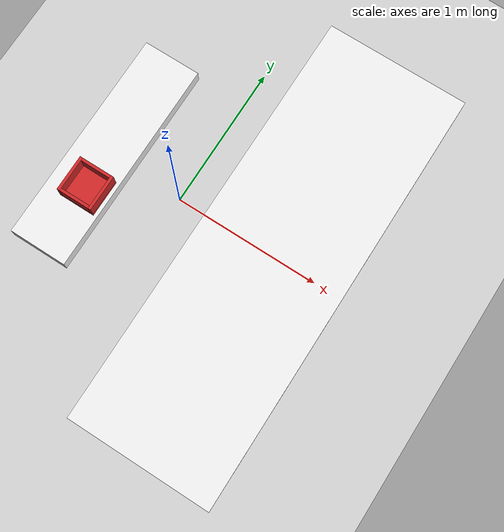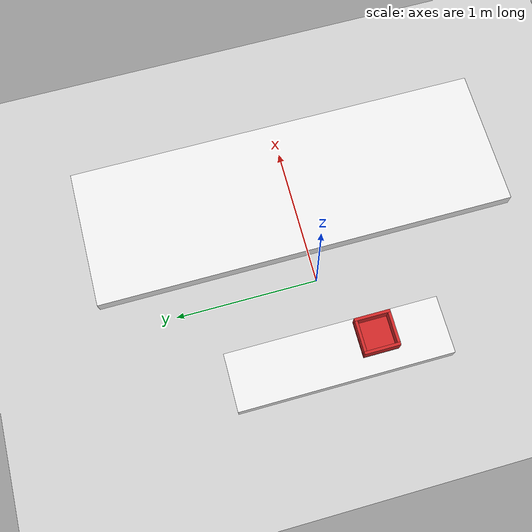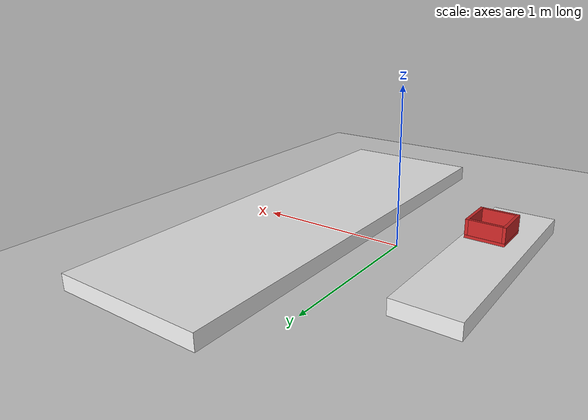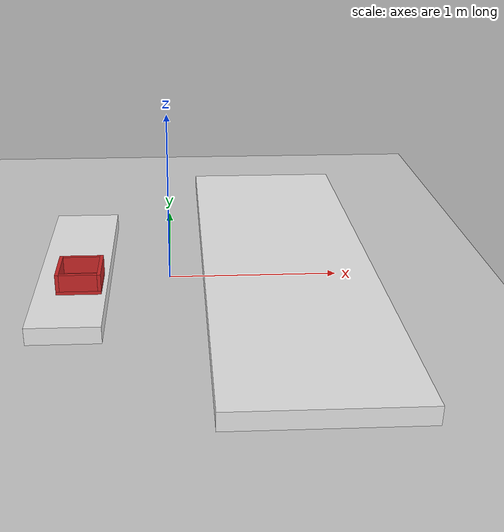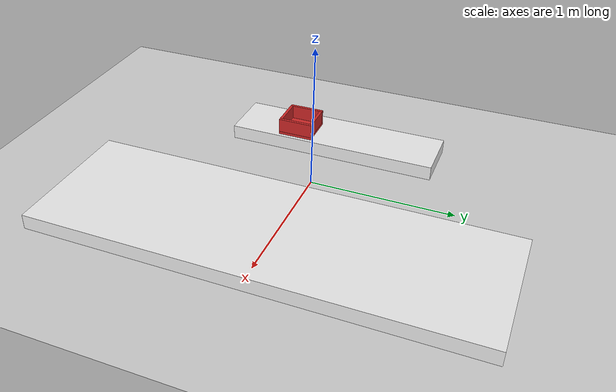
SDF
<sdf version="1.6">
 <world name="default">
  <include><uri>model://sun</uri></include>
  <include><uri>model://ground_plane</uri></include>
  <include>
   <uri>model://pick_and_place/models/workbench</uri>
   <pose>0.7 0 0 0 0 0</pose>
   <static>1</static>
  </include>
  <include>
   <uri>model://pick_and_place/models/underbin_bench</uri>
   <pose>-0.55 0 0.05 0 0 0</pose>
   <static>1</static>
  </include>
  <include>
   <uri>model://pick_and_place/models/bin_red</uri>
   <pose>-0.5 -0.27 0.11 0 0 0</pose>
   <static>1</static>
  </include>
 </world>
</sdf>

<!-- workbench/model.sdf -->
<sdf version='1.7'>
  <model name='workbench'>
    <link name='link_0'>
      <inertial>
        <mass>1</mass>
        <inertia>
          <ixx>0.166667</ixx>
          <ixy>0</ixy>
          <ixz>0</ixz>
          <iyy>0.166667</iyy>
          <iyz>0</iyz>
          <izz>0.166667</izz>
        </inertia>
        <pose>0 0 0 0 -0 0</pose>
      </inertial>
      <pose>-0 0 0 0 -0 0</pose>
      <gravity>1</gravity>
      <self_collide>0</self_collide>
      <kinematic>0</kinematic>
      <enable_wind>0</enable_wind>
      <visual name='visual'>
        <pose>0 0 0 0 -0 0</pose>
        <geometry>
          <box>
            <size>1.0 3 0.2</size>
          </box>
        </geometry>
        <material>
          <lighting>1</lighting>
          <script>
            <uri>file://media/materials/scripts/gazebo.material</uri>
            <name>Gazebo/White</name>
          </script>
          <shader type='pixel'>
            <normal_map>__default__</normal_map>
          </shader>
          <ambient>0 0 0 1</ambient>
          <diffuse>0 0 0 1</diffuse>
          <specular>0.01 0.01 0.01 1</specular>
          <emissive>0 0 0 1</emissive>
        </material>
        <transparency>0</transparency>
        <cast_shadows>1</cast_shadows>
      </visual>
      <collision name='collision'>
        <laser_retro>0</laser_retro>
        <max_contacts>10</max_contacts>
        <pose>0 0 0 0 -0 0</pose>
        <geometry>
          <box>
            <size>1.0 3 0.2</size>
          </box>
        </geometry>
        <surface>
          <friction>
            <ode>
              <mu>1</mu>
              <mu2>1</mu2>
              <fdir1>0 0 0</fdir1>
              <slip1>0</slip1>
              <slip2>0</slip2>
            </ode>
            <torsional>
              <coefficient>1</coefficient>
              <patch_radius>0</patch_radius>
              <surface_radius>0</surface_radius>
              <use_patch_radius>1</use_patch_radius>
              <ode>
                <slip>0</slip>
              </ode>
            </torsional>
          </friction>
          <bounce>
            <restitution_coefficient>0</restitution_coefficient>
            <threshold>1e+06</threshold>
          </bounce>
          <contact>
            <collide_without_contact>0</collide_without_contact>
            <collide_without_contact_bitmask>1</collide_without_contact_bitmask>
            <collide_bitmask>1</collide_bitmask>
            <ode>
              <soft_cfm>0</soft_cfm>
              <soft_erp>0.2</soft_erp>
              <kp>1e+13</kp>
              <kd>1</kd>
              <max_vel>0.01</max_vel>
              <min_depth>0</min_depth>
            </ode>
            <bullet>
              <split_impulse>1</split_impulse>
              <split_impulse_penetration_threshold>-0.01</split_impulse_penetration_threshold>
              <soft_cfm>0</soft_cfm>
              <soft_erp>0.2</soft_erp>
              <kp>1e+13</kp>
              <kd>1</kd>
            </bullet>
          </contact>
        </surface>
      </collision>
    </link>
    <static>0</static>
    <allow_auto_disable>1</allow_auto_disable>
  </model>
</sdf>

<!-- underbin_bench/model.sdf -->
<sdf version='1.7'>
  <model name='underbin_bench'>
    <link name='link_0'>
      <inertial>
        <mass>1</mass>
        <inertia>
          <ixx>0.166667</ixx>
          <ixy>0</ixy>
          <ixz>0</ixz>
          <iyy>0.166667</iyy>
          <iyz>0</iyz>
          <izz>0.166667</izz>
        </inertia>
        <pose>0 0 0 0 -0 0</pose>
      </inertial>
      <pose>0 -0 -0 0 -0 0</pose>
      <gravity>1</gravity>
      <self_collide>0</self_collide>
      <kinematic>0</kinematic>
      <enable_wind>0</enable_wind>
      <visual name='visual'>
        <pose>0 0 0 0 -0 0</pose>
        <geometry>
          <box>
            <size>0.4 1.5 0.1</size>
          </box>
        </geometry>
        <material>
          <lighting>1</lighting>
          <script>
            <uri>file://media/materials/scripts/gazebo.material</uri>
            <name>Gazebo/White</name>
          </script>
          <shader type='pixel'>
            <normal_map>__default__</normal_map>
          </shader>
          <ambient>0.3 0.3 0.3 1</ambient>
          <diffuse>0.7 0.7 0.7 1</diffuse>
          <specular>0.01 0.01 0.01 1</specular>
          <emissive>0 0 0 1</emissive>
        </material>
        <transparency>0</transparency>
        <cast_shadows>1</cast_shadows>
      </visual>
      <collision name='collision'>
        <laser_retro>0</laser_retro>
        <max_contacts>10</max_contacts>
        <pose>0 0 0 0 -0 0</pose>
        <geometry>
          <box>
            <size>0.4 1.5 0.1</size>
          </box>
        </geometry>
        <surface>
          <friction>
            <ode>
              <mu>1</mu>
              <mu2>1</mu2>
              <fdir1>0 0 0</fdir1>
              <slip1>0</slip1>
              <slip2>0</slip2>
            </ode>
            <torsional>
              <coefficient>1</coefficient>
              <patch_radius>0</patch_radius>
              <surface_radius>0</surface_radius>
              <use_patch_radius>1</use_patch_radius>
              <ode>
                <slip>0</slip>
              </ode>
            </torsional>
          </friction>
          <bounce>
            <restitution_coefficient>0</restitution_coefficient>
            <threshold>1e+06</threshold>
          </bounce>
          <contact>
            <collide_without_contact>0</collide_without_contact>
            <collide_without_contact_bitmask>1</collide_without_contact_bitmask>
            <collide_bitmask>1</collide_bitmask>
            <ode>
              <soft_cfm>0</soft_cfm>
              <soft_erp>0.2</soft_erp>
              <kp>1e+13</kp>
              <kd>1</kd>
              <max_vel>0.01</max_vel>
              <min_depth>0</min_depth>
            </ode>
            <bullet>
              <split_impulse>1</split_impulse>
              <split_impulse_penetration_threshold>-0.01</split_impulse_penetration_threshold>
              <soft_cfm>0</soft_cfm>
              <soft_erp>0.2</soft_erp>
              <kp>1e+13</kp>
              <kd>1</kd>
            </bullet>
          </contact>
        </surface>
      </collision>
    </link>
    <static>0</static>
    <allow_auto_disable>1</allow_auto_disable>
  </model>
</sdf>

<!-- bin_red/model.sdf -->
<sdf version='1.7'>

  <model name='bin_red'>

    <link name='link_0'>
      <inertial>
        <mass>1</mass>
        <inertia>
          <ixx>0.166667</ixx>
          <ixy>0</ixy>
          <ixz>0</ixz>
          <iyy>0.166667</iyy>
          <iyz>0</iyz>
          <izz>0.166667</izz>
        </inertia>
        <pose>0 0 0 0 -0 0</pose>
      </inertial>
      <pose>0 0 0 0 -0 0</pose>
      <gravity>1</gravity>
      <self_collide>0</self_collide>
      <kinematic>0</kinematic>
      <enable_wind>0</enable_wind>
      <visual name='visual'>
        <pose>0 0 0 0 -0 0</pose>
        <geometry>
          <box>
            <size>0.25 0.25 0.02</size>
          </box>
        </geometry>
        <material>
          <lighting>1</lighting>
          <script>
            <uri>file://media/materials/scripts/gazebo.material</uri>
            <name>Gazebo/Red</name>
          </script>
          <shader type='pixel'>
            <normal_map>__default__</normal_map>
          </shader>
        </material>
        <transparency>0</transparency>
        <cast_shadows>1</cast_shadows>
      </visual>
      <collision name='collision'>
        <laser_retro>0</laser_retro>
        <max_contacts>10</max_contacts>
        <pose>0 0 0 0 -0 0</pose>
        <geometry>
          <box>
            <size>0.25 0.25 0.02</size>
          </box>
        </geometry>
        <surface>
          <friction>
            <ode>
              <mu>1</mu>
              <mu2>1</mu2>
              <fdir1>0 0 0</fdir1>
              <slip1>0</slip1>
              <slip2>0</slip2>
            </ode>
            <torsional>
              <coefficient>1</coefficient>
              <patch_radius>0</patch_radius>
              <surface_radius>0</surface_radius>
              <use_patch_radius>1</use_patch_radius>
              <ode>
                <slip>0</slip>
              </ode>
            </torsional>
          </friction>
          <bounce>
            <restitution_coefficient>0</restitution_coefficient>
            <threshold>1e+06</threshold>
          </bounce>
          <contact>
            <collide_without_contact>0</collide_without_contact>
            <collide_without_contact_bitmask>1</collide_without_contact_bitmask>
            <collide_bitmask>1</collide_bitmask>
            <ode>
              <soft_cfm>0</soft_cfm>
              <soft_erp>0.2</soft_erp>
              <kp>1e+13</kp>
              <kd>1</kd>
              <max_vel>0.01</max_vel>
              <min_depth>0</min_depth>
            </ode>
            <bullet>
              <split_impulse>1</split_impulse>
              <split_impulse_penetration_threshold>-0.01</split_impulse_penetration_threshold>
              <soft_cfm>0</soft_cfm>
              <soft_erp>0.2</soft_erp>
              <kp>1e+13</kp>
              <kd>1</kd>
            </bullet>
          </contact>
        </surface>
      </collision>
    </link>
    <link name='link_1'>
      <inertial>
        <mass>1</mass>
        <inertia>
          <ixx>0.166667</ixx>
          <ixy>0</ixy>
          <ixz>0</ixz>
          <iyy>0.166667</iyy>
          <iyz>0</iyz>
          <izz>0.166667</izz>
        </inertia>
        <pose>0 0 0 0 -0 0</pose>
      </inertial>
      <pose>-0.115 0 0.06 0 -0 0</pose>
      <gravity>1</gravity>
      <self_collide>0</self_collide>
      <kinematic>0</kinematic>
      <enable_wind>0</enable_wind>
      <visual name='visual'>
        <pose>0 0 0 0 -0 0</pose>
        <geometry>
          <box>
            <size>0.02 0.25 0.1</size>
          </box>
        </geometry>
        <material>
          <lighting>1</lighting>
          <script>
            <uri>file://media/materials/scripts/gazebo.material</uri>
            <name>Gazebo/Red</name>
          </script>
          <shader type='pixel'>
            <normal_map>__default__</normal_map>
          </shader>
        </material>
        <transparency>0</transparency>
        <cast_shadows>1</cast_shadows>
      </visual>
      <collision name='collision'>
        <laser_retro>0</laser_retro>
        <max_contacts>10</max_contacts>
        <pose>0 0 0 0 -0 0</pose>
        <geometry>
          <box>
            <size>0.02 0.25 0.1</size>
          </box>
        </geometry>
        <surface>
          <friction>
            <ode>
              <mu>1</mu>
              <mu2>1</mu2>
              <fdir1>0 0 0</fdir1>
              <slip1>0</slip1>
              <slip2>0</slip2>
            </ode>
            <torsional>
              <coefficient>1</coefficient>
              <patch_radius>0</patch_radius>
              <surface_radius>0</surface_radius>
              <use_patch_radius>1</use_patch_radius>
              <ode>
                <slip>0</slip>
              </ode>
            </torsional>
          </friction>
          <bounce>
            <restitution_coefficient>0</restitution_coefficient>
            <threshold>1e+06</threshold>
          </bounce>
          <contact>
            <collide_without_contact>0</collide_without_contact>
            <collide_without_contact_bitmask>1</collide_without_contact_bitmask>
            <collide_bitmask>1</collide_bitmask>
            <ode>
              <soft_cfm>0</soft_cfm>
              <soft_erp>0.2</soft_erp>
              <kp>1e+13</kp>
              <kd>1</kd>
              <max_vel>0.01</max_vel>
              <min_depth>0</min_depth>
            </ode>
            <bullet>
              <split_impulse>1</split_impulse>
              <split_impulse_penetration_threshold>-0.01</split_impulse_penetration_threshold>
              <soft_cfm>0</soft_cfm>
              <soft_erp>0.2</soft_erp>
              <kp>1e+13</kp>
              <kd>1</kd>
            </bullet>
          </contact>
        </surface>
      </collision>
    </link>
    <link name='link_1_clone'>
      <inertial>
        <mass>1</mass>
        <inertia>
          <ixx>0.166667</ixx>
          <ixy>0</ixy>
          <ixz>0</ixz>
          <iyy>0.166667</iyy>
          <iyz>0</iyz>
          <izz>0.166667</izz>
        </inertia>
        <pose>0 0 0 0 -0 0</pose>
      </inertial>
      <pose>0.115 0 0.06 0 -0 0</pose>
      <gravity>1</gravity>
      <self_collide>0</self_collide>
      <kinematic>0</kinematic>
      <enable_wind>0</enable_wind>
      <visual name='visual'>
        <pose>0 0 0 0 -0 0</pose>
        <geometry>
          <box>
            <size>0.02 0.25 0.1</size>
          </box>
        </geometry>
        <material>
          <lighting>1</lighting>
          <script>
            <uri>file://media/materials/scripts/gazebo.material</uri>
            <name>Gazebo/Red</name>
          </script>
          <shader type='pixel'>
            <normal_map>__default__</normal_map>
          </shader>
        </material>
        <transparency>0</transparency>
        <cast_shadows>1</cast_shadows>
      </visual>
      <collision name='collision'>
        <laser_retro>0</laser_retro>
        <max_contacts>10</max_contacts>
        <pose>0 0 0 0 -0 0</pose>
        <geometry>
          <box>
            <size>0.02 0.25 0.1</size>
          </box>
        </geometry>
        <surface>
          <friction>
            <ode>
              <mu>1</mu>
              <mu2>1</mu2>
              <fdir1>0 0 0</fdir1>
              <slip1>0</slip1>
              <slip2>0</slip2>
            </ode>
            <torsional>
              <coefficient>1</coefficient>
              <patch_radius>0</patch_radius>
              <surface_radius>0</surface_radius>
              <use_patch_radius>1</use_patch_radius>
              <ode>
                <slip>0</slip>
              </ode>
            </torsional>
          </friction>
          <bounce>
            <restitution_coefficient>0</restitution_coefficient>
            <threshold>1e+06</threshold>
          </bounce>
          <contact>
            <collide_without_contact>0</collide_without_contact>
            <collide_without_contact_bitmask>1</collide_without_contact_bitmask>
            <collide_bitmask>1</collide_bitmask>
            <ode>
              <soft_cfm>0</soft_cfm>
              <soft_erp>0.2</soft_erp>
              <kp>1e+13</kp>
              <kd>1</kd>
              <max_vel>0.01</max_vel>
              <min_depth>0</min_depth>
            </ode>
            <bullet>
              <split_impulse>1</split_impulse>
              <split_impulse_penetration_threshold>-0.01</split_impulse_penetration_threshold>
              <soft_cfm>0</soft_cfm>
              <soft_erp>0.2</soft_erp>
              <kp>1e+13</kp>
              <kd>1</kd>
            </bullet>
          </contact>
        </surface>
      </collision>
    </link>
    <link name='link_2'>
      <inertial>
        <mass>1</mass>
        <inertia>
          <ixx>0.166667</ixx>
          <ixy>0</ixy>
          <ixz>0</ixz>
          <iyy>0.166667</iyy>
          <iyz>0</iyz>
          <izz>0.166667</izz>
        </inertia>
        <pose>0 0 0 0 -0 0</pose>
      </inertial>
      <pose>0 -0.115 0.06 0 -0 0</pose>
      <gravity>1</gravity>
      <self_collide>0</self_collide>
      <kinematic>0</kinematic>
      <enable_wind>0</enable_wind>
      <visual name='visual'>
        <pose>0 0 0 0 -0 0</pose>
        <geometry>
          <box>
            <size>0.21 0.02 0.1</size>
          </box>
        </geometry>
        <material>
          <lighting>1</lighting>
          <script>
            <uri>file://media/materials/scripts/gazebo.material</uri>
            <name>Gazebo/Red</name>
          </script>
          <shader type='pixel'>
            <normal_map>__default__</normal_map>
          </shader>
        </material>
        <transparency>0</transparency>
        <cast_shadows>1</cast_shadows>
      </visual>
      <collision name='collision'>
        <laser_retro>0</laser_retro>
        <max_contacts>10</max_contacts>
        <pose>0 0 0 0 -0 0</pose>
        <geometry>
          <box>
            <size>0.21 0.02 0.1</size>
          </box>
        </geometry>
        <surface>
          <friction>
            <ode>
              <mu>1</mu>
              <mu2>1</mu2>
              <fdir1>0 0 0</fdir1>
              <slip1>0</slip1>
              <slip2>0</slip2>
            </ode>
            <torsional>
              <coefficient>1</coefficient>
              <patch_radius>0</patch_radius>
              <surface_radius>0</surface_radius>
              <use_patch_radius>1</use_patch_radius>
              <ode>
                <slip>0</slip>
              </ode>
            </torsional>
          </friction>
          <bounce>
            <restitution_coefficient>0</restitution_coefficient>
            <threshold>1e+06</threshold>
          </bounce>
          <contact>
            <collide_without_contact>0</collide_without_contact>
            <collide_without_contact_bitmask>1</collide_without_contact_bitmask>
            <collide_bitmask>1</collide_bitmask>
            <ode>
              <soft_cfm>0</soft_cfm>
              <soft_erp>0.2</soft_erp>
              <kp>1e+13</kp>
              <kd>1</kd>
              <max_vel>0.01</max_vel>
              <min_depth>0</min_depth>
            </ode>
            <bullet>
              <split_impulse>1</split_impulse>
              <split_impulse_penetration_threshold>-0.01</split_impulse_penetration_threshold>
              <soft_cfm>0</soft_cfm>
              <soft_erp>0.2</soft_erp>
              <kp>1e+13</kp>
              <kd>1</kd>
            </bullet>
          </contact>
        </surface>
      </collision>
    </link>
    <link name='link_2_clone'>
      <inertial>
        <mass>1</mass>
        <inertia>
          <ixx>0.166667</ixx>
          <ixy>0</ixy>
          <ixz>0</ixz>
          <iyy>0.166667</iyy>
          <iyz>0</iyz>
          <izz>0.166667</izz>
        </inertia>
        <pose>0 0 0 0 -0 0</pose>
      </inertial>
      <pose>0 0.115 0.06 0 -0 0</pose>
      <gravity>1</gravity>
      <self_collide>0</self_collide>
      <kinematic>0</kinematic>
      <enable_wind>0</enable_wind>
      <visual name='visual'>
        <pose>0 0 0 0 -0 0</pose>
        <geometry>
          <box>
            <size>0.21 0.02 0.1</size>
          </box>
        </geometry>
        <material>
          <lighting>1</lighting>
          <script>
            <uri>file://media/materials/scripts/gazebo.material</uri>
            <name>Gazebo/Red</name>
          </script>
          <shader type='pixel'>
            <normal_map>__default__</normal_map>
          </shader>
        </material>
        <transparency>0</transparency>
        <cast_shadows>1</cast_shadows>
      </visual>
      <collision name='collision'>
        <laser_retro>0</laser_retro>
        <max_contacts>10</max_contacts>
        <pose>0 0 0 0 -0 0</pose>
        <geometry>
          <box>
            <size>0.21 0.02 0.1</size>
          </box>
        </geometry>
        <surface>
          <friction>
            <ode>
              <mu>1</mu>
              <mu2>1</mu2>
              <fdir1>0 0 0</fdir1>
              <slip1>0</slip1>
              <slip2>0</slip2>
            </ode>
            <torsional>
              <coefficient>1</coefficient>
              <patch_radius>0</patch_radius>
              <surface_radius>0</surface_radius>
              <use_patch_radius>1</use_patch_radius>
              <ode>
                <slip>0</slip>
              </ode>
            </torsional>
          </friction>
          <bounce>
            <restitution_coefficient>0</restitution_coefficient>
            <threshold>1e+06</threshold>
          </bounce>
          <contact>
            <collide_without_contact>0</collide_without_contact>
            <collide_without_contact_bitmask>1</collide_without_contact_bitmask>
            <collide_bitmask>1</collide_bitmask>
            <ode>
              <soft_cfm>0</soft_cfm>
              <soft_erp>0.2</soft_erp>
              <kp>1e+13</kp>
              <kd>1</kd>
              <max_vel>0.01</max_vel>
              <min_depth>0</min_depth>
            </ode>
            <bullet>
              <split_impulse>1</split_impulse>
              <split_impulse_penetration_threshold>-0.01</split_impulse_penetration_threshold>
              <soft_cfm>0</soft_cfm>
              <soft_erp>0.2</soft_erp>
              <kp>1e+13</kp>
              <kd>1</kd>
            </bullet>
          </contact>
        </surface>
      </collision>
    </link>
    <static>0</static>
    <allow_auto_disable>1</allow_auto_disable>

  </model>

</sdf>
